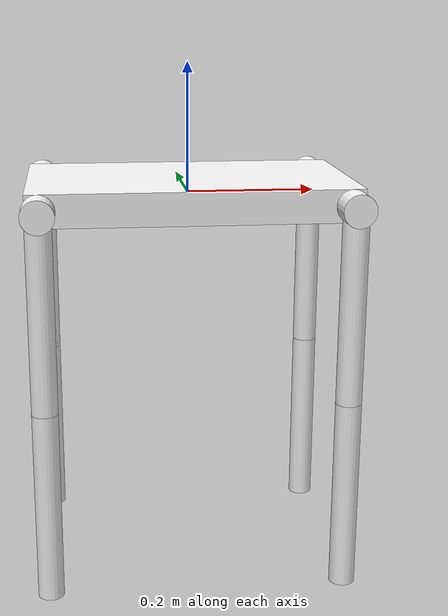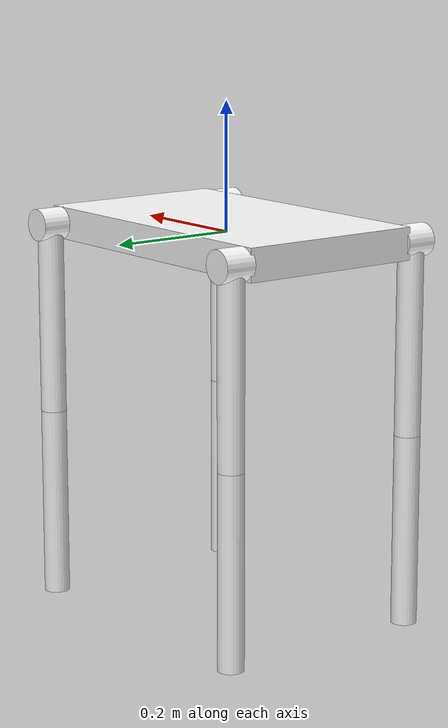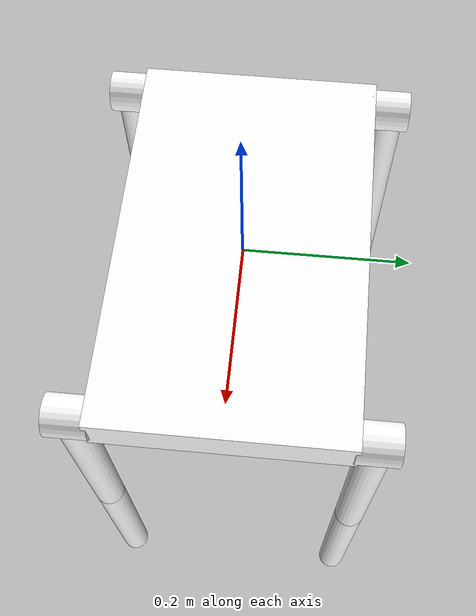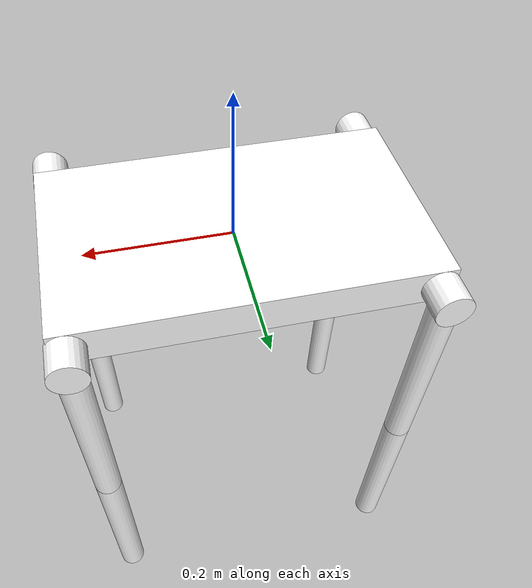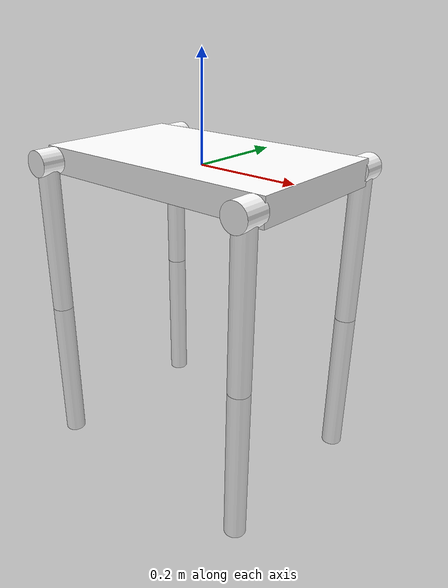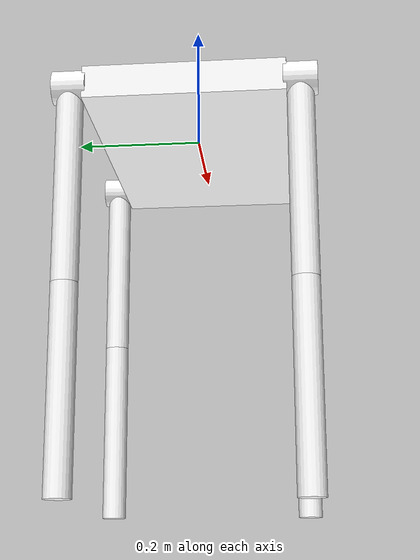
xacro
<?xml version='1.0'?>
<robot name="legged_robot" xmlns:xacro="http://www.ros.org/wiki/xacro">
  <!-- true is static model-->

<!-- Included URDF/XACRO Files -->
<xacro:include filename="$(find wamot)/urdf/materials.urdf.xacro" />

<!--configuration-->
<property name="base_mass" value="10.0" />
<property name="base_x_size" value="0.5" />
<property name="base_y_size" value="0.3" />
<property name="base_z_size" value="0.05" />
<property name="leg_base_height" value="0.050" />
<property name="leg_base_radius" value="0.025" />
<property name="lower_leg_height" value="0.3" />
<property name="lower_leg_radius" value="0.02" />
<property name="lower_leg_mass" value="2.0" />
<property name="upper_leg_height" value="0.3" />
<property name="upper_leg_radius" value="0.02" />
<property name="upper_leg_mass" value="2.0" />

<!--macro-->
<macro name="box_inertia" params="m x y z">
<inertia  ixx="${m*(y*y+z*z)/12.}" ixy = "0." ixz = "0."
iyy="${m*(x*x+z*z)/12.}" iyz = "0."
izz="${m*(x*x+z*z)/12.}" />
</macro>

<macro name="cylinder_inertia" params="m r h">
<inertia  ixx="${m*(3*r*r+h*h)/12}" ixy = "0" ixz = "0"
iyy="${m*(3*r*r+h*h)/12}" iyz = "0"
izz="${m*r*r/2}" />
</macro>

<link name="base_footprint"/>

<gazebo reference="base_footprint">
<turnGravityOff>false</turnGravityOff>
</gazebo>

<joint name="base_link_joint" type="fixed">
<origin xyz="0 0 0" rpy="0 0 0" />
<parent link="base_footprint"/>
<child link="torso" />
</joint>

  <!--body-->
  <link name="torso">
    <inertial>
    <origin xyz="0 0 0" rpy="0 0 0" />
    <mass value="${base_mass}" />
    <box_inertia  m="${base_mass}" x="${base_x_size}" y="${base_y_size}" z="${base_z_size}"/>
    </inertial>
    <collision name='collision'>
    <origin xyz="0 0 0" rpy="0 0 0" />
      <geometry>
	<box size="${base_x_size} ${base_y_size} ${base_z_size}"/>
      </geometry>
    </collision>
    <visual name='visual'>
    <origin xyz="0 0 0" rpy="0 0 0" />
      <geometry>
	<box size="${base_x_size} ${base_y_size} ${base_z_size}"/>
      </geometry>
      <material name="White" />
    <material name="White" />
   </visual>
  </link>

  <link name='base_left_fore'>
  <visual name='visual'>
    <geometry>
      <cylinder length="${leg_base_height}" radius="${leg_base_radius}"/>
    </geometry>
  <material name="White" />
   </visual>
  </link>

  <link name='base_left_rear'>
  <visual name='visual'>
    <geometry>
      <cylinder length="${leg_base_height}" radius="${leg_base_radius}"/>
    </geometry>
  <material name="White" />
   </visual>
  </link>

  <link name='base_right_fore'>
  <visual name='visual'>
    <geometry>
      <cylinder length="${leg_base_height}" radius="${leg_base_radius}"/>
    </geometry>
  <material name="White" />
   </visual>
  </link>

  <link name='base_right_rear'>
    <visual name='visual'>
      <geometry>
	<cylinder length="${leg_base_height}" radius="${leg_base_radius}"/>
      </geometry>
    <material name="White" />
   </visual>
  </link>

  <link name='link_left_fore_lower'>
    <inertial>
     <origin xyz="0 0 0.15" rpy="0 0 0" />
      <mass value="${lower_leg_mass}" />
      <cylinder_inertia  m="${lower_leg_mass}" r="${lower_leg_radius}" h="${lower_leg_height}" />
    </inertial>
    <collision name='collision'>
      <origin xyz="0 0 0.15" rpy="0 0 0" />
      <geometry>
	<cylinder length="${lower_leg_height}" radius="${lower_leg_radius}"/>
      </geometry>
    </collision>
    <visual name='visual'>
      <origin xyz="0 0 0.15" rpy="0 0 0" />
      <geometry>
	<cylinder length="${lower_leg_height}" radius="${lower_leg_radius}"/>
      </geometry>
    <material name="White" />
   </visual>
  </link>

  <link name='link_left_rear_lower'>
    <inertial>
      <origin xyz="0 0 0.15" rpy="0 0 0" />
      <mass value="${lower_leg_mass}" />
      <cylinder_inertia  m="${lower_leg_mass}" r="${lower_leg_radius}" h="${lower_leg_height}" />
    </inertial>
    <collision name='collision'>
      <origin xyz="0 0 0.15" rpy="0 0 0" />
      <geometry>
	<cylinder length="${lower_leg_height}" radius="${lower_leg_radius}"/>
      </geometry>
    </collision>
    <visual name='visual'>
      <origin xyz="0 0 0.15" rpy="0 0 0" />
      <geometry>
	<cylinder length="${lower_leg_height}" radius="${lower_leg_radius}"/>
      </geometry>
    <material name="White" />
   </visual>
  </link>

  <link name='link_right_fore_lower'>
    <inertial>
      <origin xyz="0 0 0.15" rpy="0 0 0" />
      <mass value="${lower_leg_mass}" />
      <cylinder_inertia  m="${lower_leg_mass}" r="${lower_leg_radius}" h="${lower_leg_height}" />
    </inertial>
    <collision name='collision'>
      <origin xyz="0 0 0.15" rpy="0 0 0" />
      <geometry>
	<cylinder length="${lower_leg_height}" radius="${lower_leg_radius}"/>
      </geometry>
    </collision>
    <visual name='visual'>
      <origin xyz="0 0 0.15" rpy="0 0 0" />
      <geometry>
	<cylinder length="${lower_leg_height}" radius="${lower_leg_radius}"/>
      </geometry>
    <material name="White" />
   </visual>
  </link>

  <link name='link_right_rear_lower'>
    <inertial>
      <origin xyz="0 0 0.15" rpy="0 0 0" />
      <mass value="${lower_leg_mass}" />
      <cylinder_inertia  m="${lower_leg_mass}" r="${lower_leg_radius}" h="${lower_leg_height}" />
    </inertial>
    <collision name='collision'>
      <origin xyz="0 0 0.15" rpy="0 0 0" />
      <geometry>
	<cylinder length="${lower_leg_height}" radius="${lower_leg_radius}"/>
      </geometry>
    </collision>
    <visual name='visual'>
      <origin xyz="0 0 0.15" rpy="0 0 0" />
      <geometry>
	<cylinder length="${lower_leg_height}" radius="${lower_leg_radius}"/>
      </geometry>
    <material name="White" />
   </visual>
  </link>

  <link name='link_left_fore_upper'>
    <inertial>
      <origin xyz="0 0 0.15" rpy="0 0 0" />
      <mass value="${upper_leg_mass}" />
      <cylinder_inertia  m="${upper_leg_mass}" r="${upper_leg_radius}" h="${upper_leg_height}" />
    </inertial>
    <collision name='collision'>
      <origin xyz="0 0 0.15" rpy="0 0 0" />
      <geometry>
	<cylinder length="${upper_leg_height}" radius="${upper_leg_radius}"/>
      </geometry>
    </collision>
    <visual name='visual'>
      <origin xyz="0 0 0.15" rpy="0 0 0" />
      <geometry>
	<cylinder length="${upper_leg_height}" radius="${upper_leg_radius}"/>
      </geometry>
    <material name="White" />
   </visual>
  </link>

  <link name='link_left_rear_upper'>
    <inertial>
      <origin xyz="0 0 0.15" rpy="0 0 0" />
      <mass value="${upper_leg_mass}" />
      <cylinder_inertia  m="${upper_leg_mass}" r="${upper_leg_radius}" h="${upper_leg_height}" />
    </inertial>
    <collision name='collision'>
      <origin xyz="0 0 0.15" rpy="0 0 0" />
      <geometry>
	<cylinder length="${upper_leg_height}" radius="${upper_leg_radius}"/>
      </geometry>
    </collision>
    <visual name='visual'>
      <origin xyz="0 0 0.15" rpy="0 0 0" />
      <geometry>
	<cylinder length="${upper_leg_height}" radius="${upper_leg_radius}"/>
      </geometry>
    <material name="White" />
   </visual>
  </link>

  <link name='link_right_fore_upper'>
    <inertial>
      <origin xyz="0 0 0.15" rpy="0 0 0" />
      <mass value="${upper_leg_mass}" />
      <cylinder_inertia  m="${upper_leg_mass}" r="${upper_leg_radius}" h="${upper_leg_height}" />
    </inertial>
    <collision name='collision'>
      <origin xyz="0 0 0.15" rpy="0 0 0" />
      <geometry>
	<cylinder length="${upper_leg_height}" radius="${upper_leg_radius}"/>
      </geometry>
    </collision>
    <visual name='visual'>
      <origin xyz="0 0 0.15" rpy="0 0 0" />
      <geometry>
	<cylinder length="${upper_leg_height}" radius="${upper_leg_radius}"/>
      </geometry>
    <material name="White" />
   </visual>
  </link>

  <link name='link_right_rear_upper'>
    <origin xyz="0 0 0.15" rpy="0 0 0" />
    <inertial>
      <mass value="${upper_leg_mass}" />
      <cylinder_inertia  m="${upper_leg_mass}" r="${upper_leg_radius}" h="${upper_leg_height}" />
    </inertial>
    <collision name='collision'>
      <origin xyz="0 0 0.15" rpy="0 0 0" />
      <geometry>
	<cylinder length="${upper_leg_height}" radius="${upper_leg_radius}"/>
      </geometry>
    </collision>
    <visual name='visual'>
      <origin xyz="0 0 0.15" rpy="0 0 0" />
      <geometry>
	<cylinder length="${upper_leg_height}" radius="${upper_leg_radius}"/>
      </geometry>
    <material name="White" />
   </visual>
  </link>

  <!--joint-->
  <!--left fore 1st joint-->
  <joint type="revolute" name="hinge_lf1">
    <parent link="torso"/>
    <child link="base_left_fore"/>
    <origin xyz="0.23 0.17 0.0" rpy="1.5707 0 0" />
    <axis xyz="0 0 1" rpy="0 0 0"/>
    <limit effort="30" velocity="1.0" lower="-2.2" upper="0.7" />
  </joint>

  <!--left rear 1st joint-->
  <joint type="revolute" name="hinge_lr1">
    <parent link="torso"/>
    <child link="base_left_rear"/>
    <origin xyz="-0.23 0.17 0.0" rpy="1.5707 0 0" />
    <axis xyz="0 0 1" rpy="0 0 0"/>
    <limit effort="30" velocity="1.0" lower="-2.2" upper="0.7" />
  </joint>

  <!--right fore 1st joint-->
  <joint type="revolute" name="hinge_rf1">
    <parent link="torso"/>
    <child link="base_right_fore"/>
    <origin xyz="0.23 -0.17 0.0" rpy="1.5707 0 0" />
    <axis xyz="0 0 1" rpy="0 0 0"/>
    <limit effort="30" velocity="1.0" lower="-2.2" upper="0.7" />
  </joint>

  <!--right rear 1st joint-->
  <joint type="revolute" name="hinge_rr1">
    <parent link="torso"/>
    <child link="base_right_rear"/>
    <origin xyz="-0.23 -0.17 0.0" rpy="1.5707 0 0" />
    <axis xyz="0 0 1" rpy="0 0 0"/>
    <limit effort="30" velocity="1.0" lower="-2.2" upper="0.7" />
  </joint>

  <!--left fore 2nd joint-->
  <joint type="revolute" name="hinge_lf2">
    <parent link="base_left_fore"/>
    <child link="link_left_fore_upper"/>
    <origin xyz="0 0 0" rpy="1.5707 0 0" />
    <axis xyz="0 1 0" rpy="0 0 0"/>
    <limit effort="30" velocity="1.0" lower="-2.2" upper="0.7" />
  </joint>

 <!--left rear 2nd joint-->
  <joint type="revolute" name="hinge_lr2">
    <parent link="base_left_rear"/>
    <child link="link_left_rear_upper"/>
    <origin xyz="0 0 0" rpy="1.5707 0 0" />
    <axis xyz="0 1 0" rpy="0 0 0"/>
    <limit effort="30" velocity="1.0" lower="-2.2" upper="0.7" />
  </joint>

  <!--right fore 2nd joint-->
  <joint type="revolute" name="hinge_rf2">
    <parent link="base_right_fore"/>
    <child link="link_right_fore_upper"/>
    <origin xyz="0 0 0" rpy="1.5707 0 0" />
    <axis xyz="0 1 0" rpy="0 0 0"/>
    <limit effort="30" velocity="1.0" lower="-2.2" upper="0.7" />
  </joint>

  <!--right rear 2nd joint-->
  <joint type="revolute" name="hinge_rr2">
    <parent link="base_right_rear"/>
    <child link="link_right_rear_upper"/>
    <origin xyz="0 0 0" rpy="1.5707 0 0" />
    <axis xyz="0 1 0" rpy="0 0 0"/>
    <limit effort="30" velocity="1.0" lower="-2.2" upper="0.7" />
  </joint>

  <!--left fore 3rd joint-->
  <joint type="revolute" name="hinge_lf3">
    <parent link="link_left_fore_upper"/>
    <child link="link_left_fore_lower"/>
    <origin xyz="0 0 0.30" rpy="0 0 0" />
    <axis xyz="0 1 0" rpy="0 0 0"/>
    <limit effort="30" velocity="1.0" lower="-2.2" upper="0.7" />
  </joint>

  <!--left rear 3rd joint-->
  <joint type="revolute" name="hinge_lr3">
    <parent link="link_left_rear_upper"/>
    <child link="link_left_rear_lower"/>
    <origin xyz="0 0 0.30" rpy="0 0 0" />
    <axis xyz="0 1 0" rpy="0 0 0"/>
    <limit effort="30" velocity="1.0" lower="-2.2" upper="0.7" />
  </joint>

  <!--right fore 3rd joint-->
  <joint type="revolute" name="hinge_rf3">
    <parent link="link_right_fore_upper"/>
    <child link="link_right_fore_lower"/>
    <origin xyz="0 0 0.30" rpy="0 0 0" />
    <axis xyz="0 1 0" rpy="0 0 0"/>
    <limit effort="30" velocity="1.0" lower="-2.2" upper="0.7" />
  </joint>

  <!--right rear 3rd joint-->
  <joint type="revolute" name="hinge_rr3">
    <parent link="link_right_rear_upper"/>
    <child link="link_right_rear_lower"/>
    <origin xyz="0 0 0.30" rpy="0 0 0" />
    <axis xyz="0 1 0" rpy="0 0 0"/>
    <limit effort="30" velocity="1.0" lower="-2.2" upper="0.7" />
  </joint>

  <plugin name="gazebo_legged_robot_plugin" filename="libgazebo_legged_robot_plugin.so" >
    <hinge_lf1>hinge_lf1</hinge_lf1>
    <hinge_lf2>hinge_lf2</hinge_lf2>
    <hinge_lf3>hinge_lf3</hinge_lf3>
    <hinge_lr1>hinge_lr1</hinge_lr1>
    <hinge_lr2>hinge_lr2</hinge_lr2>
    <hinge_lr3>hinge_lr3</hinge_lr3>
    <hinge_rf1>hinge_rf1</hinge_rf1>
    <hinge_rf2>hinge_rf2</hinge_rf2>
    <hinge_rf3>hinge_rf3</hinge_rf3>
    <hinge_rr1>hinge_rr1</hinge_rr1>
    <hinge_rr2>hinge_rr2</hinge_rr2>
    <hinge_rr3>hinge_rr3</hinge_rr3>
    <gain>0.1 </gain>
    <sensor>sensor</sensor>
    <ray_sensor>laser</ray_sensor>
  </plugin>
</robot>

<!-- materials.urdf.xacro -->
<robot>
<material name="Black">
<color rgba="0.0 0.0 0.0 1.0"/>
</material>

<material name="Blue">
<color rgba="0.0 0.0 0.8 1.0"/>
</material>

<material name="Green">
<color rgba="0.0 0.8 0.0 1.0"/>
</material>

<material name="Gray">
<color rgba="0.7 0.7 0.7 1.0"/>
</material>

<material name="DarkGray">
<color rgba="0.3 0.3 0.3 1.0"/>
</material>

<material name="Red">
<color rgba="0.8 0.0 0.0 1.0"/>
</material>

<material name="White">
<color rgba="1.0 1.0 1.0 1.0"/>
</material>

<material name="Yellow">
<color rgba="0.8 0.8 0.0 1.0"/>
</material>
</robot>
